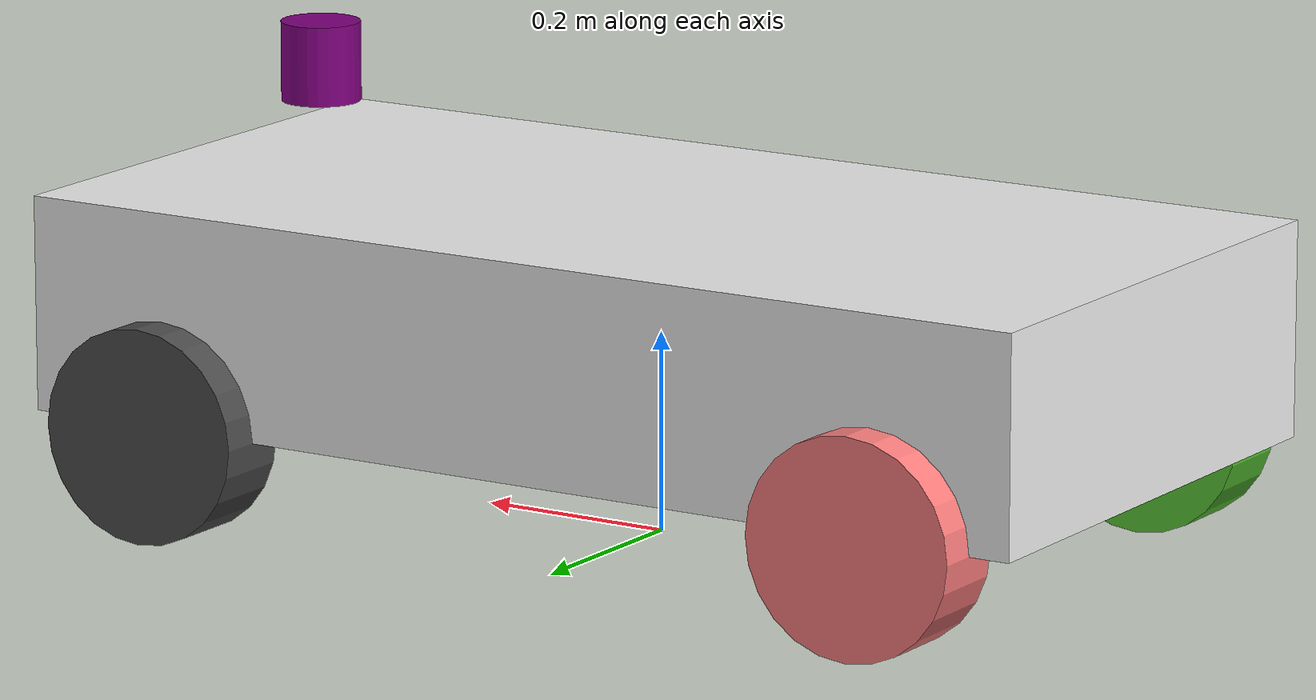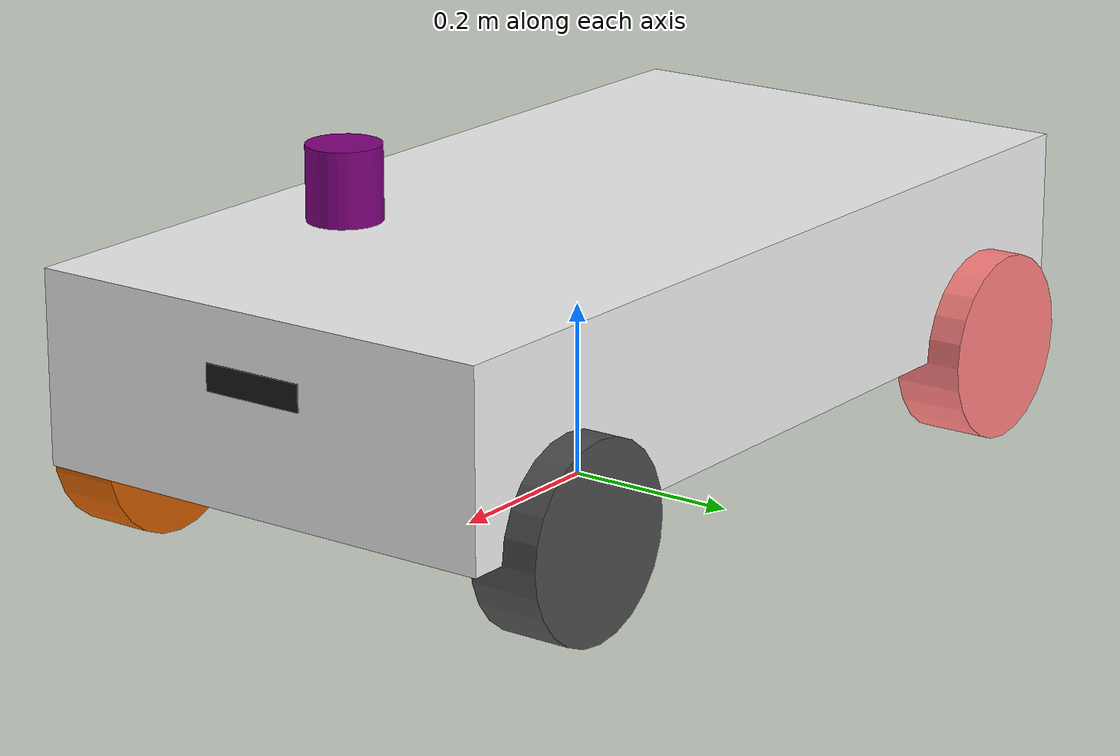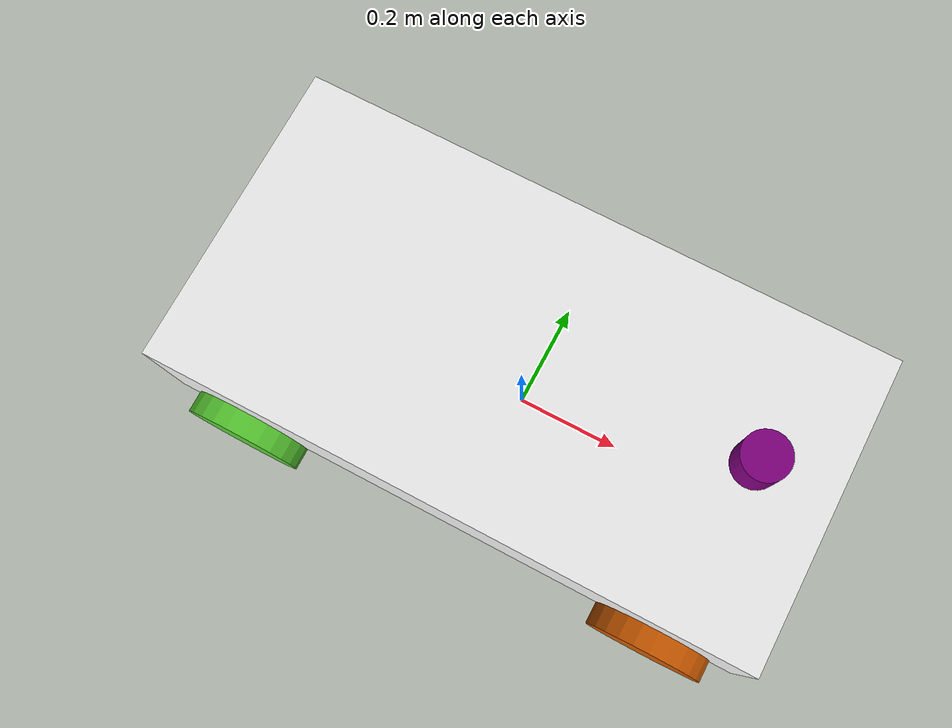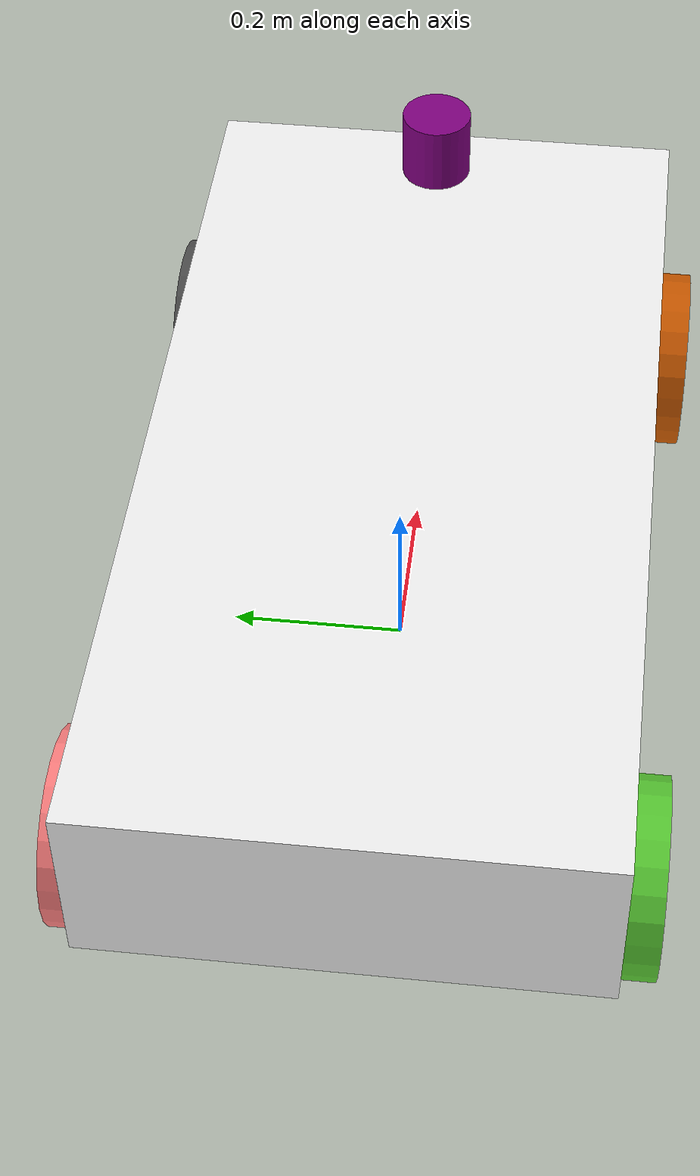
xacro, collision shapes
<?xml version="1.0"?>
<robot name="jzMecanumRobot"
    xmlns:xacro="http://ros.org/wiki/xacro"
    xmlns:gz="http://gazebosim.org/schema">

    <!-- 切换参数：true 为仿真，false 为真机，可通过 launch 传入 -->
    <xacro:arg name="use_sim_time" default="true" />

    <!-- 载入核心结构（常量、底盘、轮子） -->
    <xacro:include filename="common_properties.xacro" />
    <xacro:include filename="mecanum_base.xacro" />
    <xacro:include filename="mecanum_wheels.xacro" />

    <!-- 根据 use_sim_time 选择不同的组件 -->
    <xacro:if value="$(arg use_sim_time)">
        <!-- 仿真：加载 Gazebo 摩擦、传感器、仿真控制器 -->
        <xacro:include filename="gazebo_wheels.xacro" />
        <xacro:include filename="sensors_gazebo.xacro" />
        <xacro:include filename="ros2_control_sim.xacro" />

        <!-- 关键添加：麦轮平面运动插件 -->
        <gazebo>
            <plugin name="mecanum_drive" filename="libgazebo_ros_planar_move.so">
                <commandTopic>cmd_vel</commandTopic>
                <odometryTopic>odom</odometryTopic>
                <odometryFrame>odom</odometryFrame>
                <odometryRate>50.0</odometryRate>
                <robotBaseFrame>base_footprint</robotBaseFrame>
                <publishTF>true</publishTF>
                <publishOdomTF>true</publishOdomTF>
                <!-- 添加轮子关节名，插件会驱动轮子转动 -->
                <leftFrontJoint>fl_wheel_joint</leftFrontJoint>
                <rightFrontJoint>fr_wheel_joint</rightFrontJoint>
                <leftRearJoint>rl_wheel_joint</leftRearJoint>
                <rightRearJoint>rr_wheel_joint</rightRearJoint>
            </plugin>
        </gazebo>

        <!-- 原 URDF 中的全局物理设置 -->
        <gazebo>
            <physics type="ode">
                <max_step_size>0.001</max_step_size>
                <real_time_factor>1.0</real_time_factor>
                <real_time_update_rate>1000</real_time_update_rate>
            </physics>
        </gazebo>
    </xacro:if>

    <xacro:unless value="$(arg use_sim_time)">
        <!-- 真机：只加载真实硬件控制器 -->
        <xacro:include filename="ros2_control_real.xacro" />
    </xacro:unless>

</robot>

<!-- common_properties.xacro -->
<robot xmlns:xacro="http://ros.org/wiki/xacro">

    <!-- 数学常量 -->
    <xacro:property name="M_PI" value="3.1415926535897931" />
    <xacro:property name="PI_2" value="1.570796327" />

    <!-- 底盘尺寸（根据你的 URDF 填入） -->
    <xacro:property name="base_box_x" value="1.1" />
    <xacro:property name="base_box_y" value="0.56" />
    <xacro:property name="base_box_z" value="0.216" />
    <xacro:property name="base_mass" value="1.5" />
    <!-- 底盘在 base_footprint 上的偏移，你的原值是 z=0.108 -->
    <xacro:property name="base_offset_z" value="0.108" />

    <!-- 轮子参数（与你的 collision 圆柱一致） -->
    <xacro:property name="wheel_width" value="0.08" />
    <xacro:property name="wheel_radius" value="0.108" />
    <xacro:property name="wheel_mass" value="1.2" />

    <!-- 轮子位置 -->
    <xacro:property name="wheel_x" value="0.40" />   <!-- 前后距离 -->
    <xacro:property name="wheel_y" value="0.28" />   <!-- 左右距离 -->
    <!-- 如果轮子中心在底盘底部下方，填负值，你的原关节 origin z=0 -->
    <xacro:property name="wheel_z" value="0.0" />

    <!-- 颜色定义 -->
    <material name="white">
        <color rgba="0.95 0.95 0.95 1.0" />
    </material>
    <material name="purple">
        <color rgba="0.5 0.0 0.5 1.0" />
    </material>
    <material name="black">
        <color rgba="0.1 0.1 0.1 1.0" />
    </material>
    <material name="dark_grey">
        <color rgba="0.3 0.3 0.3 1.0" />
    </material>

    <material name="dark_orange">
        <color rgba="0.8 0.35 0.0 1.0" />
    </material>
    <material name="light_red">
        <color rgba="1.0 0.5 0.5 1.0" />
    </material>
    <material name="grass_green">
        <color rgba="0.35 0.8 0.2 1.0" />
    </material>
    <material name="iodine">
        <color rgba="0.25 0.1 0.25 1.0" />
    </material>

    <!-- 惯性宏（可直接用） -->
    <xacro:macro name="box_inertia" params="m x y z">
        <inertia ixx="${m*(y*y+z*z)/12}" ixy="0" ixz="0"
            iyy="${m*(x*x+z*z)/12}" iyz="0"
            izz="${m*(x*x+y*y)/12}" />
    </xacro:macro>

    <xacro:macro name="cylinder_inertia" params="m r l">
        <inertia ixx="${m*(3*r*r+l*l)/12}" ixy="0" ixz="0"
            iyy="${m*(3*r*r+l*l)/12}" iyz="0"
            izz="${m*r*r/2}" />
    </xacro:macro>

    <!-- STL 路径 base，方便统一管理 -->
    <xacro:property name="mesh_package" value="jzt_robot" />
    <xacro:property name="mesh_share_dir" value="$(find jzt_robot)/meshes" />

</robot>

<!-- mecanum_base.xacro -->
<robot xmlns:xacro="http://ros.org/wiki/xacro">

    <!-- base_footprint -->
    <link name="base_footprint" />

    <joint name="base_joint" type="fixed">
        <parent link="base_footprint" />
        <child link="base_link" />
        <origin xyz="0 0 ${base_offset_z}" rpy="0 0 0" />
    </joint>

    <link name="base_link">
        <visual>
            <origin xyz="0 0 ${base_box_z/2}" rpy="0 0 0" />
            <geometry>
                <box size="${base_box_x} ${base_box_y} ${base_box_z}" />
            </geometry>
            <material name="white" />
        </visual>
        <collision>
            <origin xyz="0 0 ${base_box_z/2}" rpy="0 0 0" />
            <geometry>
                <box size="${base_box_x} ${base_box_y} ${base_box_z}" />
            </geometry>
        </collision>
        <inertial>
            <mass value="${base_mass}" />
            <xacro:box_inertia m="${base_mass}" x="${base_box_x}" y="${base_box_y}"
                z="${base_box_z}" />
        </inertial>
    </link>

    <!-- 激光 -->
    <joint name="laser_joint" type="fixed">
        <parent link="base_link" />
        <child link="laser_link" />
        <origin xyz="0.40 0 0.32" rpy="0 0 0" />
    </joint>
    <link name="laser_link">
        <visual>
            <geometry>
                <cylinder length="0.08" radius="0.04" />
            </geometry>
            <material name="purple" />
        </visual>
        <collision>
            <geometry>
                <cylinder length="0.08" radius="0.04" />
            </geometry>
        </collision>
        <inertial>
            <mass value="0.3" />
            <inertia ixx="0.0002" ixy="0" ixz="0" iyy="0.0002" iyz="0" izz="0.00024" />
        </inertial>
    </link>

    <!-- 相机 -->
    <joint name="camera_joint" type="fixed">
        <parent link="base_link" />
        <child link="camera_link" />
        <origin xyz="0.536 0 0.14" rpy="0 0 0" />
    </joint>
    <link name="camera_link">
        <visual>
            <geometry>
                <box size="0.03 0.12 0.03" />
            </geometry>
            <material name="black" />
        </visual>
        <collision>
            <geometry>
                <box size="0.03 0.12 0.03" />
            </geometry>
        </collision>
        <inertial>
            <mass value="0.2" />
            <inertia ixx="0.0001" ixy="0" ixz="0" iyy="0.0002" iyz="0" izz="0.0002" />
        </inertial>
    </link>
    <link name="camera_optical_link" />
    <joint name="camera_optical_joint" type="fixed">
        <parent link="camera_link" />
        <child link="camera_optical_link" />
        <origin xyz="0.015 0 0" rpy="${-PI_2} 0 ${-PI_2}" />
    </joint>

    <!-- IMU -->
    <joint name="imu_joint" type="fixed">
        <parent link="base_link" />
        <child link="imu_link" />
        <origin xyz="0 0 0" rpy="0 0 0" />
    </joint>
    <link name="imu_link">
        <visual>
            <geometry>
                <box size="0.02 0.02 0.02" />
            </geometry>
        </visual>
        <collision>
            <geometry>
                <box size="0.02 0.02 0.02" />
            </geometry>
        </collision>
        <inertial>
            <mass value="0.1" />
            <inertia ixx="3e-6" ixy="0" ixz="0" iyy="3e-6" iyz="0" izz="3e-6" />
        </inertial>
    </link>

</robot>

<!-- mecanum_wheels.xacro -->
<robot xmlns:xacro="http://ros.org/wiki/xacro">

    <!-- 定义单个轮子宏，参数化位置和标识符 -->
    <xacro:macro name="mecanum_wheel" params="prefix x y z axis_x axis_y mesh_name yaw wheel_color">
        <joint name="${prefix}_wheel_joint" type="continuous">
            <parent link="base_link" />
            <child link="${prefix}_wheel_link" />
            <origin xyz="${x} ${y} ${z}" rpy="0 0 ${yaw}" />
            <axis xyz="${axis_x} ${axis_y} 0" rpy="0 0 0" />
        </joint>

        <link name="${prefix}_wheel_link">
            <visual>
                <origin xyz="0 0 0" rpy="0 0 0" />
                <geometry>
                    <!-- 使用 package:// 路径 + 参数化的 STL 文件名 -->
                    <mesh filename="${mesh_share_dir}/${mesh_name}.STL"
                        scale="2.0 2.0 2.0" />
                </geometry>
                <material name="${wheel_color}" />
            </visual>
            <collision>
                <origin xyz="0 0 0" rpy="0 ${PI_2} 0" />
                <geometry>
                    <cylinder length="${wheel_width}" radius="${wheel_radius}" />
                </geometry>
            </collision>
            0 <inertial>
                <origin xyz="0 0 0" rpy="0 0 0" />
                <mass value="${wheel_mass}" />
                <xacro:cylinder_inertia m="${wheel_mass}" r="${wheel_radius}"
                    l="${wheel_width}" />
            </inertial>
        </link>
    </xacro:macro>

    <!-- 调用宏生成四个轮子，注意轴方向与你的 URDF 保持一致（都是 0 1 0） -->
    <xacro:mecanum_wheel prefix="fl"
        x="${wheel_x}" y="${wheel_y}" z="${wheel_z}"
        axis_x="1" axis_y="0"
        mesh_name="fl_wheel_link" yaw="${M_PI/2}" wheel_color="dark_grey" />

    <xacro:mecanum_wheel prefix="fr"
        x="${wheel_x}" y="${-wheel_y}" z="${wheel_z}"
        axis_x="-1" axis_y="0"
        mesh_name="fr_wheel_link" yaw="${-M_PI/2}" wheel_color="dark_orange" />

    <xacro:mecanum_wheel prefix="rl"
        x="${-wheel_x}" y="${wheel_y}" z="${wheel_z}"
        axis_x="1" axis_y="0"
        mesh_name="rl_wheel_link" yaw="${M_PI/2}" wheel_color="light_red" />

    <xacro:mecanum_wheel prefix="rr"
        x="${-wheel_x}" y="${-wheel_y}" z="${wheel_z}"
        axis_x="-1" axis_y="0"
        mesh_name="rr_wheel_link" yaw="${-M_PI/2}" wheel_color="grass_green" />

</robot>
